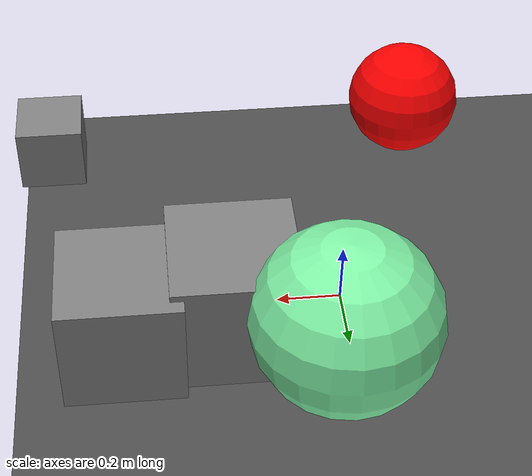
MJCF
<mujoco>
   <asset>
      <texture name="builtin_checker" builtin="checker" type="2d" rgb1="1 1 0" rgb2="0 0 1" width="200" height="200"/>
      <texture name="builtin_gradient" builtin="gradient" rgb1="0 .9 .3" rgb2="1 1 1" width="200" height="200"/>
      <texture name="builtin_flat" builtin="flat" rgb1="1 0 0" rgb2="1 0 0"  width="200" height="200"/>

      <material name="checker_mat" reflectance="0.9" texrepeat="3 3" texture="builtin_checker" texuniform="false" />
      <material name="gradient_mat" reflectance="1" texrepeat="1 1" texture="builtin_gradient" texuniform="true"/>
      <material name="flat_mat" reflectance="1" texrepeat="1 1" texture="builtin_flat" texuniform="true"/>
   </asset>

   <worldbody>
      <light diffuse=".9 .9 .9" pos="0 0 3" dir="0 0 -1"/>
     <geom type="plane" size="1 1 0.1" rgba="0.3 0.3 0.3 1"/>
<body pos="0.91 -0.73 0.11">
<joint type="free"/>
 <geom type="box" size="0.11 0.11 0.11" material="checker_mat" />
</body>
<body pos="0.68 0.19 0.18">
<joint type="free"/>
 <geom type="box" size="0.18 0.18 0.18" material="checker_mat" />
</body>
<body pos="0.05 0.36 0.28">
<joint type="free"/>
 <geom type="sphere" size="0.28 0.28 0.28" material="gradient_mat" />
</body>
<body pos="-0.33 -0.77 0.19">
<joint type="free"/>
 <geom type="sphere" size="0.19 0.19 0.19" material="flat_mat" />
</body>
<body pos="0.35 0.14 0.19">
<joint type="free"/>
 <geom type="box" size="0.19 0.19 0.19" material="checker_mat" />
</body><camera euler="60 0 180" fovy="60" name="camera_a" pos="0 -1.5 1"></camera>   </worldbody>
</mujoco>
